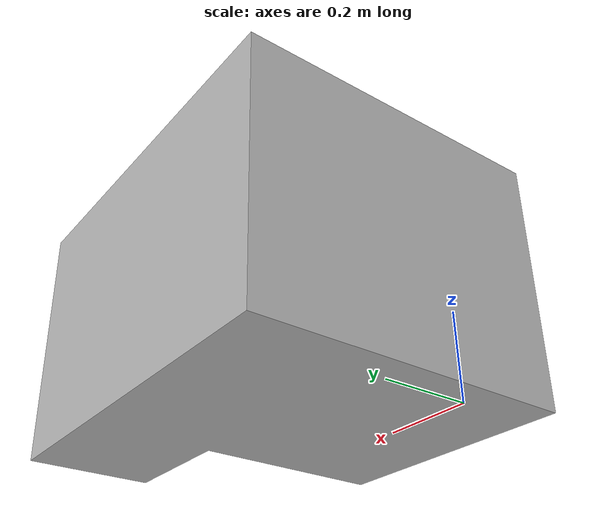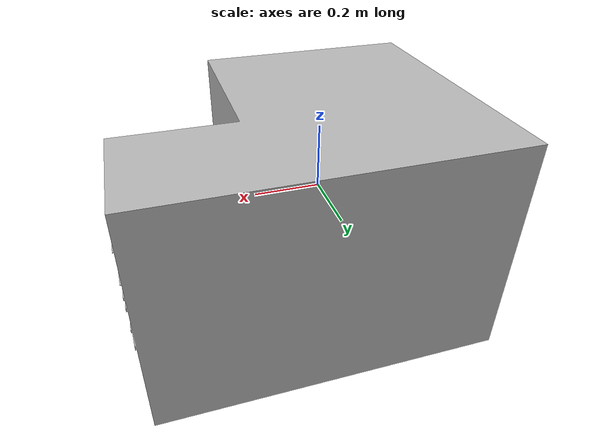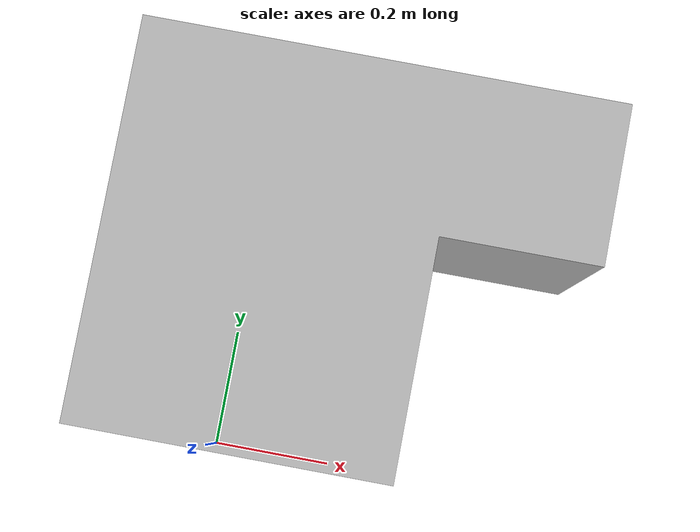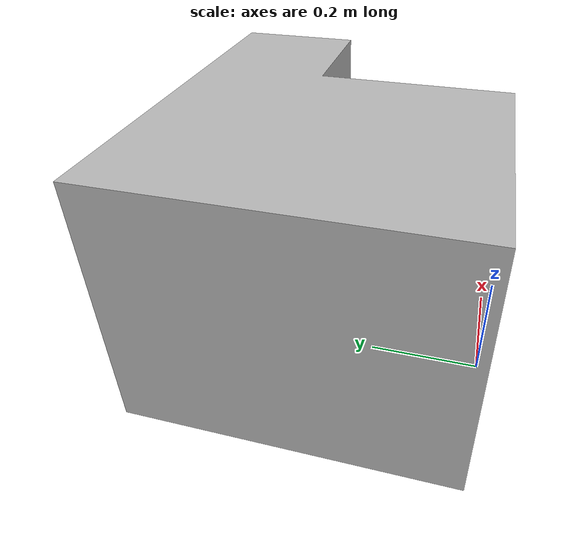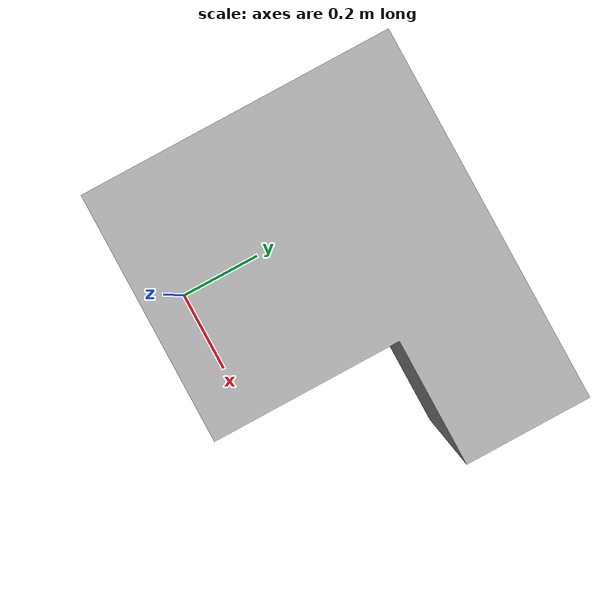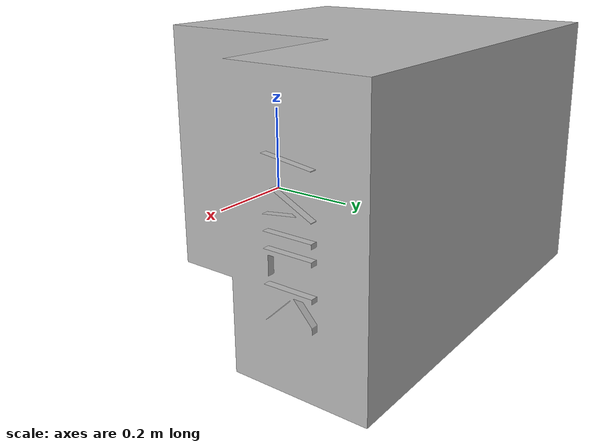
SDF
<sdf version='1.7'>
  <model name='Milk_machine_assy'>
    <link name='base_link'>
      <inertial>
        <pose>0.117493 0.170082 -0.349307 0 -0 0</pose>
        <mass>196.719</mass>
        <inertia>
          <ixx>10.9048</ixx>
          <ixy>-0.000173748</ixy>
          <ixz>1.98732</ixz>
          <iyy>14.3555</iyy>
          <iyz>5.58298e-05</iyz>
          <izz>11.9094</izz>
        </inertia>
      </inertial>
      <collision name='base_link_collision'>
        <pose>0 0 0 0 -0 0</pose>
        <geometry>
          <mesh>
            <scale>1 1 1</scale>
            <uri>model://Milk_machine_assy/meshes/base_link.STL</uri>
          </mesh>
        </geometry>
      </collision>
      <visual name='base_link_visual'>
        <pose>0 0 0 0 -0 0</pose>
        <geometry>
          <mesh>
            <scale>1 1 1</scale>
            <uri>model://Milk_machine_assy/meshes/base_link.STL</uri>
          </mesh>
        </geometry>
      </visual>
    </link>
  </model>
</sdf>
